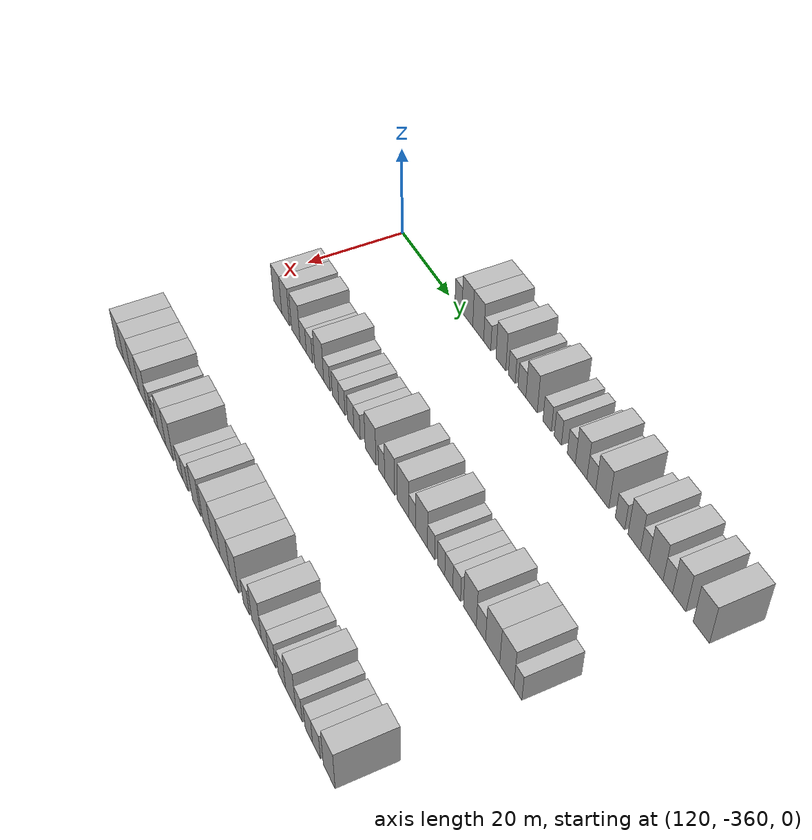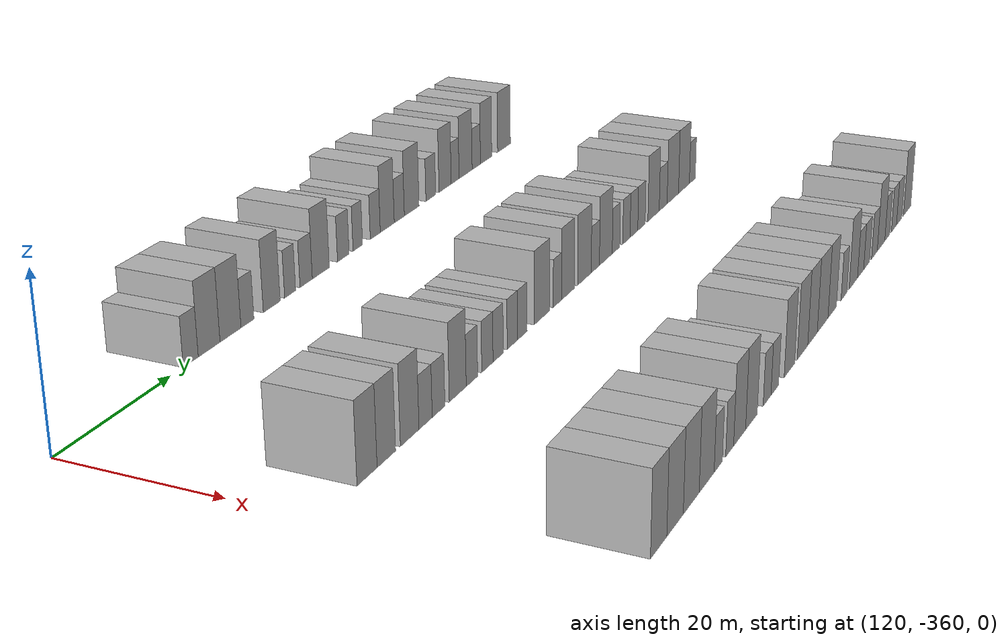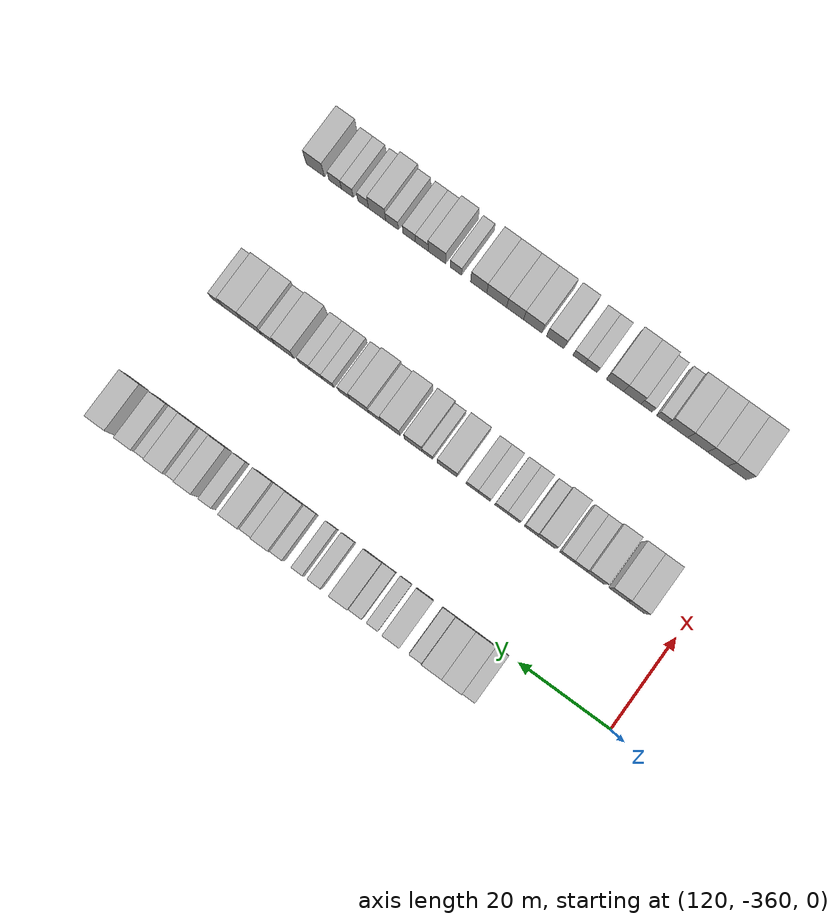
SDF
<sdf version="1.6">
 <world name="default">
  <model name="building_715">
   <static>1</static>
   <pose>115.0000 -336.2109 0 0.000000 0.000000 0.000000</pose>
   <link name="link">
    <pose>0 0 3.00 0 0 0</pose>
    <collision name="collision"><geometry><box><size>10.0000 2.8570 6.0000</size></box></geometry></collision>
    <visual name="visual">
     <cast_shadows>0</cast_shadows>
     <geometry><box><size>10.0000 2.8570 6.0000</size></box></geometry>
     <material>
      <script>
       <uri>model://HANNAS_wall/materials/scripts</uri>
       <uri>model://HANNAS_wall/materials/textures</uri>
       <name>vrc/HANNAS_wall</name>
      </script>
     </material>
    </visual>
   </link>
  </model>
  <model name="building_716">
   <static>1</static>
   <pose>115.0000 -332.6510 0 0.000000 0.000000 0.000000</pose>
   <link name="link">
    <pose>0 0 4.50 0 0 0</pose>
    <collision name="collision"><geometry><box><size>10.0000 4.2629 9.0000</size></box></geometry></collision>
    <visual name="visual">
     <cast_shadows>0</cast_shadows>
     <geometry><box><size>10.0000 4.2629 9.0000</size></box></geometry>
     <material>
      <script>
       <uri>model://HANNAS_wall/materials/scripts</uri>
       <uri>model://HANNAS_wall/materials/textures</uri>
       <name>vrc/HANNAS_wall</name>
      </script>
     </material>
    </visual>
   </link>
  </model>
  <model name="building_717">
   <static>1</static>
   <pose>115.0000 -328.3897 0 0.000000 0.000000 0.000000</pose>
   <link name="link">
    <pose>0 0 4.50 0 0 0</pose>
    <collision name="collision"><geometry><box><size>10.0000 4.2595 9.0000</size></box></geometry></collision>
    <visual name="visual">
     <cast_shadows>0</cast_shadows>
     <geometry><box><size>10.0000 4.2595 9.0000</size></box></geometry>
     <material>
      <script>
       <uri>model://HANNAS_wall/materials/scripts</uri>
       <uri>model://HANNAS_wall/materials/textures</uri>
       <name>vrc/HANNAS_wall</name>
      </script>
     </material>
    </visual>
   </link>
  </model>
  <model name="building_718">
   <static>1</static>
   <pose>115.0000 -324.9057 0 0.000000 0.000000 0.000000</pose>
   <link name="link">
    <pose>0 0 3.00 0 0 0</pose>
    <collision name="collision"><geometry><box><size>10.0000 2.7086 6.0000</size></box></geometry></collision>
    <visual name="visual">
     <cast_shadows>0</cast_shadows>
     <geometry><box><size>10.0000 2.7086 6.0000</size></box></geometry>
     <material>
      <script>
       <uri>model://HANNAS_wall/materials/scripts</uri>
       <uri>model://HANNAS_wall/materials/textures</uri>
       <name>vrc/HANNAS_wall</name>
      </script>
     </material>
    </visual>
   </link>
  </model>
  <model name="building_719">
   <static>1</static>
   <pose>115.0000 -319.7165 0 0.000000 0.000000 0.000000</pose>
   <link name="link">
    <pose>0 0 4.50 0 0 0</pose>
    <collision name="collision"><geometry><box><size>10.0000 3.6697 9.0000</size></box></geometry></collision>
    <visual name="visual">
     <cast_shadows>0</cast_shadows>
     <geometry><box><size>10.0000 3.6697 9.0000</size></box></geometry>
     <material>
      <script>
       <uri>model://HANNAS_wall/materials/scripts</uri>
       <uri>model://HANNAS_wall/materials/textures</uri>
       <name>vrc/HANNAS_wall</name>
      </script>
     </material>
    </visual>
   </link>
  </model>
  <model name="building_720">
   <static>1</static>
   <pose>115.0000 -315.6428 0 0.000000 0.000000 0.000000</pose>
   <link name="link">
    <pose>0 0 3.00 0 0 0</pose>
    <collision name="collision"><geometry><box><size>10.0000 2.4778 6.0000</size></box></geometry></collision>
    <visual name="visual">
     <cast_shadows>0</cast_shadows>
     <geometry><box><size>10.0000 2.4778 6.0000</size></box></geometry>
     <material>
      <script>
       <uri>model://HANNAS_wall/materials/scripts</uri>
       <uri>model://HANNAS_wall/materials/textures</uri>
       <name>vrc/HANNAS_wall</name>
      </script>
     </material>
    </visual>
   </link>
  </model>
  <model name="building_721">
   <static>1</static>
   <pose>115.0000 -311.9733 0 0.000000 0.000000 0.000000</pose>
   <link name="link">
    <pose>0 0 3.00 0 0 0</pose>
    <collision name="collision"><geometry><box><size>10.0000 2.8614 6.0000</size></box></geometry></collision>
    <visual name="visual">
     <cast_shadows>0</cast_shadows>
     <geometry><box><size>10.0000 2.8614 6.0000</size></box></geometry>
     <material>
      <script>
       <uri>model://HANNAS_wall/materials/scripts</uri>
       <uri>model://HANNAS_wall/materials/textures</uri>
       <name>vrc/HANNAS_wall</name>
      </script>
     </material>
    </visual>
   </link>
  </model>
  <model name="building_722">
   <static>1</static>
   <pose>115.0000 -308.5242 0 0.000000 0.000000 0.000000</pose>
   <link name="link">
    <pose>0 0 4.50 0 0 0</pose>
    <collision name="collision"><geometry><box><size>10.0000 4.0368 9.0000</size></box></geometry></collision>
    <visual name="visual">
     <cast_shadows>0</cast_shadows>
     <geometry><box><size>10.0000 4.0368 9.0000</size></box></geometry>
     <material>
      <script>
       <uri>model://HANNAS_wall/materials/scripts</uri>
       <uri>model://HANNAS_wall/materials/textures</uri>
       <name>vrc/HANNAS_wall</name>
      </script>
     </material>
    </visual>
   </link>
  </model>
  <model name="building_723">
   <static>1</static>
   <pose>115.0000 -303.0676 0 0.000000 0.000000 0.000000</pose>
   <link name="link">
    <pose>0 0 3.00 0 0 0</pose>
    <collision name="collision"><geometry><box><size>10.0000 2.8765 6.0000</size></box></geometry></collision>
    <visual name="visual">
     <cast_shadows>0</cast_shadows>
     <geometry><box><size>10.0000 2.8765 6.0000</size></box></geometry>
     <material>
      <script>
       <uri>model://HANNAS_wall/materials/scripts</uri>
       <uri>model://HANNAS_wall/materials/textures</uri>
       <name>vrc/HANNAS_wall</name>
      </script>
     </material>
    </visual>
   </link>
  </model>
  <model name="building_724">
   <static>1</static>
   <pose>115.0000 -299.4144 0 0.000000 0.000000 0.000000</pose>
   <link name="link">
    <pose>0 0 3.00 0 0 0</pose>
    <collision name="collision"><geometry><box><size>10.0000 2.4298 6.0000</size></box></geometry></collision>
    <visual name="visual">
     <cast_shadows>0</cast_shadows>
     <geometry><box><size>10.0000 2.4298 6.0000</size></box></geometry>
     <material>
      <script>
       <uri>model://HANNAS_wall/materials/scripts</uri>
       <uri>model://HANNAS_wall/materials/textures</uri>
       <name>vrc/HANNAS_wall</name>
      </script>
     </material>
    </visual>
   </link>
  </model>
  <model name="building_725">
   <static>1</static>
   <pose>115.0000 -294.8780 0 0.000000 0.000000 0.000000</pose>
   <link name="link">
    <pose>0 0 3.00 0 0 0</pose>
    <collision name="collision"><geometry><box><size>10.0000 2.6429 6.0000</size></box></geometry></collision>
    <visual name="visual">
     <cast_shadows>0</cast_shadows>
     <geometry><box><size>10.0000 2.6429 6.0000</size></box></geometry>
     <material>
      <script>
       <uri>model://HANNAS_wall/materials/scripts</uri>
       <uri>model://HANNAS_wall/materials/textures</uri>
       <name>vrc/HANNAS_wall</name>
      </script>
     </material>
    </visual>
   </link>
  </model>
  <model name="building_726">
   <static>1</static>
   <pose>115.0000 -291.6686 0 0.000000 0.000000 0.000000</pose>
   <link name="link">
    <pose>0 0 4.50 0 0 0</pose>
    <collision name="collision"><geometry><box><size>10.0000 3.7758 9.0000</size></box></geometry></collision>
    <visual name="visual">
     <cast_shadows>0</cast_shadows>
     <geometry><box><size>10.0000 3.7758 9.0000</size></box></geometry>
     <material>
      <script>
       <uri>model://HANNAS_wall/materials/scripts</uri>
       <uri>model://HANNAS_wall/materials/textures</uri>
       <name>vrc/HANNAS_wall</name>
      </script>
     </material>
    </visual>
   </link>
  </model>
  <model name="building_727">
   <static>1</static>
   <pose>115.0000 -288.3835 0 0.000000 0.000000 0.000000</pose>
   <link name="link">
    <pose>0 0 3.00 0 0 0</pose>
    <collision name="collision"><geometry><box><size>10.0000 2.7945 6.0000</size></box></geometry></collision>
    <visual name="visual">
     <cast_shadows>0</cast_shadows>
     <geometry><box><size>10.0000 2.7945 6.0000</size></box></geometry>
     <material>
      <script>
       <uri>model://HANNAS_wall/materials/scripts</uri>
       <uri>model://HANNAS_wall/materials/textures</uri>
       <name>vrc/HANNAS_wall</name>
      </script>
     </material>
    </visual>
   </link>
  </model>
  <model name="building_728">
   <static>1</static>
   <pose>115.0000 -284.9111 0 0.000000 0.000000 0.000000</pose>
   <link name="link">
    <pose>0 0 4.50 0 0 0</pose>
    <collision name="collision"><geometry><box><size>10.0000 4.1502 9.0000</size></box></geometry></collision>
    <visual name="visual">
     <cast_shadows>0</cast_shadows>
     <geometry><box><size>10.0000 4.1502 9.0000</size></box></geometry>
     <material>
      <script>
       <uri>model://HANNAS_wall/materials/scripts</uri>
       <uri>model://HANNAS_wall/materials/textures</uri>
       <name>vrc/HANNAS_wall</name>
      </script>
     </material>
    </visual>
   </link>
  </model>
  <model name="building_729">
   <static>1</static>
   <pose>115.0000 -279.4002 0 0.000000 0.000000 0.000000</pose>
   <link name="link">
    <pose>0 0 3.00 0 0 0</pose>
    <collision name="collision"><geometry><box><size>10.0000 2.8717 6.0000</size></box></geometry></collision>
    <visual name="visual">
     <cast_shadows>0</cast_shadows>
     <geometry><box><size>10.0000 2.8717 6.0000</size></box></geometry>
     <material>
      <script>
       <uri>model://HANNAS_wall/materials/scripts</uri>
       <uri>model://HANNAS_wall/materials/textures</uri>
       <name>vrc/HANNAS_wall</name>
      </script>
     </material>
    </visual>
   </link>
  </model>
  <model name="building_730">
   <static>1</static>
   <pose>115.0000 -275.1136 0 0.000000 0.000000 0.000000</pose>
   <link name="link">
    <pose>0 0 4.50 0 0 0</pose>
    <collision name="collision"><geometry><box><size>10.0000 3.7015 9.0000</size></box></geometry></collision>
    <visual name="visual">
     <cast_shadows>0</cast_shadows>
     <geometry><box><size>10.0000 3.7015 9.0000</size></box></geometry>
     <material>
      <script>
       <uri>model://HANNAS_wall/materials/scripts</uri>
       <uri>model://HANNAS_wall/materials/textures</uri>
       <name>vrc/HANNAS_wall</name>
      </script>
     </material>
    </visual>
   </link>
  </model>
  <model name="building_731">
   <static>1</static>
   <pose>115.0000 -272.0405 0 0.000000 0.000000 0.000000</pose>
   <link name="link">
    <pose>0 0 3.00 0 0 0</pose>
    <collision name="collision"><geometry><box><size>10.0000 2.4447 6.0000</size></box></geometry></collision>
    <visual name="visual">
     <cast_shadows>0</cast_shadows>
     <geometry><box><size>10.0000 2.4447 6.0000</size></box></geometry>
     <material>
      <script>
       <uri>model://HANNAS_wall/materials/scripts</uri>
       <uri>model://HANNAS_wall/materials/textures</uri>
       <name>vrc/HANNAS_wall</name>
      </script>
     </material>
    </visual>
   </link>
  </model>
  <model name="building_732">
   <static>1</static>
   <pose>115.0000 -268.7542 0 0.000000 0.000000 0.000000</pose>
   <link name="link">
    <pose>0 0 4.50 0 0 0</pose>
    <collision name="collision"><geometry><box><size>10.0000 4.1280 9.0000</size></box></geometry></collision>
    <visual name="visual">
     <cast_shadows>0</cast_shadows>
     <geometry><box><size>10.0000 4.1280 9.0000</size></box></geometry>
     <material>
      <script>
       <uri>model://HANNAS_wall/materials/scripts</uri>
       <uri>model://HANNAS_wall/materials/textures</uri>
       <name>vrc/HANNAS_wall</name>
      </script>
     </material>
    </visual>
   </link>
  </model>
  <model name="building_733">
   <static>1</static>
   <pose>115.0000 -265.3446 0 0.000000 0.000000 0.000000</pose>
   <link name="link">
    <pose>0 0 3.00 0 0 0</pose>
    <collision name="collision"><geometry><box><size>10.0000 2.6912 6.0000</size></box></geometry></collision>
    <visual name="visual">
     <cast_shadows>0</cast_shadows>
     <geometry><box><size>10.0000 2.6912 6.0000</size></box></geometry>
     <material>
      <script>
       <uri>model://HANNAS_wall/materials/scripts</uri>
       <uri>model://HANNAS_wall/materials/textures</uri>
       <name>vrc/HANNAS_wall</name>
      </script>
     </material>
    </visual>
   </link>
  </model>
  <model name="building_734">
   <static>1</static>
   <pose>115.0000 -262.1402 0 0.000000 0.000000 0.000000</pose>
   <link name="link">
    <pose>0 0 4.50 0 0 0</pose>
    <collision name="collision"><geometry><box><size>10.0000 3.7177 9.0000</size></box></geometry></collision>
    <visual name="visual">
     <cast_shadows>0</cast_shadows>
     <geometry><box><size>10.0000 3.7177 9.0000</size></box></geometry>
     <material>
      <script>
       <uri>model://HANNAS_wall/materials/scripts</uri>
       <uri>model://HANNAS_wall/materials/textures</uri>
       <name>vrc/HANNAS_wall</name>
      </script>
     </material>
    </visual>
   </link>
  </model>
  <model name="building_735">
   <static>1</static>
   <pose>115.0000 -256.0846 0 0.000000 0.000000 0.000000</pose>
   <link name="link">
    <pose>0 0 4.50 0 0 0</pose>
    <collision name="collision"><geometry><box><size>10.0000 4.3934 9.0000</size></box></geometry></collision>
    <visual name="visual">
     <cast_shadows>0</cast_shadows>
     <geometry><box><size>10.0000 4.3934 9.0000</size></box></geometry>
     <material>
      <script>
       <uri>model://HANNAS_wall/materials/scripts</uri>
       <uri>model://HANNAS_wall/materials/textures</uri>
       <name>vrc/HANNAS_wall</name>
      </script>
     </material>
    </visual>
   </link>
  </model>
  <model name="building_938">
   <static>1</static>
   <pose>145.0000 -350.9941 0 0.000000 0.000000 0.000000</pose>
   <link name="link">
    <pose>0 0 4.50 0 0 0</pose>
    <collision name="collision"><geometry><box><size>10.0000 3.9386 9.0000</size></box></geometry></collision>
    <visual name="visual">
     <cast_shadows>0</cast_shadows>
     <geometry><box><size>10.0000 3.9386 9.0000</size></box></geometry>
     <material>
      <script>
       <uri>model://HANNAS_wall/materials/scripts</uri>
       <uri>model://HANNAS_wall/materials/textures</uri>
       <name>vrc/HANNAS_wall</name>
      </script>
     </material>
    </visual>
   </link>
  </model>
  <model name="building_939">
   <static>1</static>
   <pose>145.0000 -347.1530 0 0.000000 0.000000 0.000000</pose>
   <link name="link">
    <pose>0 0 4.50 0 0 0</pose>
    <collision name="collision"><geometry><box><size>10.0000 3.7435 9.0000</size></box></geometry></collision>
    <visual name="visual">
     <cast_shadows>0</cast_shadows>
     <geometry><box><size>10.0000 3.7435 9.0000</size></box></geometry>
     <material>
      <script>
       <uri>model://HANNAS_wall/materials/scripts</uri>
       <uri>model://HANNAS_wall/materials/textures</uri>
       <name>vrc/HANNAS_wall</name>
      </script>
     </material>
    </visual>
   </link>
  </model>
  <model name="building_940">
   <static>1</static>
   <pose>145.0000 -342.3034 0 0.000000 0.000000 0.000000</pose>
   <link name="link">
    <pose>0 0 4.50 0 0 0</pose>
    <collision name="collision"><geometry><box><size>10.0000 3.9558 9.0000</size></box></geometry></collision>
    <visual name="visual">
     <cast_shadows>0</cast_shadows>
     <geometry><box><size>10.0000 3.9558 9.0000</size></box></geometry>
     <material>
      <script>
       <uri>model://HANNAS_wall/materials/scripts</uri>
       <uri>model://HANNAS_wall/materials/textures</uri>
       <name>vrc/HANNAS_wall</name>
      </script>
     </material>
    </visual>
   </link>
  </model>
  <model name="building_941">
   <static>1</static>
   <pose>145.0000 -338.8755 0 0.000000 0.000000 0.000000</pose>
   <link name="link">
    <pose>0 0 3.00 0 0 0</pose>
    <collision name="collision"><geometry><box><size>10.0000 2.8999 6.0000</size></box></geometry></collision>
    <visual name="visual">
     <cast_shadows>0</cast_shadows>
     <geometry><box><size>10.0000 2.8999 6.0000</size></box></geometry>
     <material>
      <script>
       <uri>model://HANNAS_wall/materials/scripts</uri>
       <uri>model://HANNAS_wall/materials/textures</uri>
       <name>vrc/HANNAS_wall</name>
      </script>
     </material>
    </visual>
   </link>
  </model>
  <model name="building_942">
   <static>1</static>
   <pose>145.0000 -335.9991 0 0.000000 0.000000 0.000000</pose>
   <link name="link">
    <pose>0 0 3.00 0 0 0</pose>
    <collision name="collision"><geometry><box><size>10.0000 2.8530 6.0000</size></box></geometry></collision>
    <visual name="visual">
     <cast_shadows>0</cast_shadows>
     <geometry><box><size>10.0000 2.8530 6.0000</size></box></geometry>
     <material>
      <script>
       <uri>model://HANNAS_wall/materials/scripts</uri>
       <uri>model://HANNAS_wall/materials/textures</uri>
       <name>vrc/HANNAS_wall</name>
      </script>
     </material>
    </visual>
   </link>
  </model>
  <model name="building_943">
   <static>1</static>
   <pose>145.0000 -331.5865 0 0.000000 0.000000 0.000000</pose>
   <link name="link">
    <pose>0 0 4.50 0 0 0</pose>
    <collision name="collision"><geometry><box><size>10.0000 3.9721 9.0000</size></box></geometry></collision>
    <visual name="visual">
     <cast_shadows>0</cast_shadows>
     <geometry><box><size>10.0000 3.9721 9.0000</size></box></geometry>
     <material>
      <script>
       <uri>model://HANNAS_wall/materials/scripts</uri>
       <uri>model://HANNAS_wall/materials/textures</uri>
       <name>vrc/HANNAS_wall</name>
      </script>
     </material>
    </visual>
   </link>
  </model>
  <model name="building_944">
   <static>1</static>
   <pose>145.0000 -328.2192 0 0.000000 0.000000 0.000000</pose>
   <link name="link">
    <pose>0 0 3.00 0 0 0</pose>
    <collision name="collision"><geometry><box><size>10.0000 2.7624 6.0000</size></box></geometry></collision>
    <visual name="visual">
     <cast_shadows>0</cast_shadows>
     <geometry><box><size>10.0000 2.7624 6.0000</size></box></geometry>
     <material>
      <script>
       <uri>model://HANNAS_wall/materials/scripts</uri>
       <uri>model://HANNAS_wall/materials/textures</uri>
       <name>vrc/HANNAS_wall</name>
      </script>
     </material>
    </visual>
   </link>
  </model>
  <model name="building_945">
   <static>1</static>
   <pose>145.0000 -324.4283 0 0.000000 0.000000 0.000000</pose>
   <link name="link">
    <pose>0 0 3.00 0 0 0</pose>
    <collision name="collision"><geometry><box><size>10.0000 2.8195 6.0000</size></box></geometry></collision>
    <visual name="visual">
     <cast_shadows>0</cast_shadows>
     <geometry><box><size>10.0000 2.8195 6.0000</size></box></geometry>
     <material>
      <script>
       <uri>model://HANNAS_wall/materials/scripts</uri>
       <uri>model://HANNAS_wall/materials/textures</uri>
       <name>vrc/HANNAS_wall</name>
      </script>
     </material>
    </visual>
   </link>
  </model>
  <model name="building_946">
   <static>1</static>
   <pose>145.0000 -321.7033 0 0.000000 0.000000 0.000000</pose>
   <link name="link">
    <pose>0 0 3.00 0 0 0</pose>
    <collision name="collision"><geometry><box><size>10.0000 2.6305 6.0000</size></box></geometry></collision>
    <visual name="visual">
     <cast_shadows>0</cast_shadows>
     <geometry><box><size>10.0000 2.6305 6.0000</size></box></geometry>
     <material>
      <script>
       <uri>model://HANNAS_wall/materials/scripts</uri>
       <uri>model://HANNAS_wall/materials/textures</uri>
       <name>vrc/HANNAS_wall</name>
      </script>
     </material>
    </visual>
   </link>
  </model>
  <model name="building_947">
   <static>1</static>
   <pose>145.0000 -318.0372 0 0.000000 0.000000 0.000000</pose>
   <link name="link">
    <pose>0 0 3.00 0 0 0</pose>
    <collision name="collision"><geometry><box><size>10.0000 2.7016 6.0000</size></box></geometry></collision>
    <visual name="visual">
     <cast_shadows>0</cast_shadows>
     <geometry><box><size>10.0000 2.7016 6.0000</size></box></geometry>
     <material>
      <script>
       <uri>model://HANNAS_wall/materials/scripts</uri>
       <uri>model://HANNAS_wall/materials/textures</uri>
       <name>vrc/HANNAS_wall</name>
      </script>
     </material>
    </visual>
   </link>
  </model>
  <model name="building_948">
   <static>1</static>
   <pose>145.0000 -315.3774 0 0.000000 0.000000 0.000000</pose>
   <link name="link">
    <pose>0 0 3.00 0 0 0</pose>
    <collision name="collision"><geometry><box><size>10.0000 2.6180 6.0000</size></box></geometry></collision>
    <visual name="visual">
     <cast_shadows>0</cast_shadows>
     <geometry><box><size>10.0000 2.6180 6.0000</size></box></geometry>
     <material>
      <script>
       <uri>model://HANNAS_wall/materials/scripts</uri>
       <uri>model://HANNAS_wall/materials/textures</uri>
       <name>vrc/HANNAS_wall</name>
      </script>
     </material>
    </visual>
   </link>
  </model>
  <model name="building_949">
   <static>1</static>
   <pose>145.0000 -309.8979 0 0.000000 0.000000 0.000000</pose>
   <link name="link">
    <pose>0 0 4.50 0 0 0</pose>
    <collision name="collision"><geometry><box><size>10.0000 4.3411 9.0000</size></box></geometry></collision>
    <visual name="visual">
     <cast_shadows>0</cast_shadows>
     <geometry><box><size>10.0000 4.3411 9.0000</size></box></geometry>
     <material>
      <script>
       <uri>model://HANNAS_wall/materials/scripts</uri>
       <uri>model://HANNAS_wall/materials/textures</uri>
       <name>vrc/HANNAS_wall</name>
      </script>
     </material>
    </visual>
   </link>
  </model>
  <model name="building_950">
   <static>1</static>
   <pose>145.0000 -305.5266 0 0.000000 0.000000 0.000000</pose>
   <link name="link">
    <pose>0 0 3.00 0 0 0</pose>
    <collision name="collision"><geometry><box><size>10.0000 2.4014 6.0000</size></box></geometry></collision>
    <visual name="visual">
     <cast_shadows>0</cast_shadows>
     <geometry><box><size>10.0000 2.4014 6.0000</size></box></geometry>
     <material>
      <script>
       <uri>model://HANNAS_wall/materials/scripts</uri>
       <uri>model://HANNAS_wall/materials/textures</uri>
       <name>vrc/HANNAS_wall</name>
      </script>
     </material>
    </visual>
   </link>
  </model>
  <model name="building_951">
   <static>1</static>
   <pose>145.0000 -302.4135 0 0.000000 0.000000 0.000000</pose>
   <link name="link">
    <pose>0 0 4.50 0 0 0</pose>
    <collision name="collision"><geometry><box><size>10.0000 3.8249 9.0000</size></box></geometry></collision>
    <visual name="visual">
     <cast_shadows>0</cast_shadows>
     <geometry><box><size>10.0000 3.8249 9.0000</size></box></geometry>
     <material>
      <script>
       <uri>model://HANNAS_wall/materials/scripts</uri>
       <uri>model://HANNAS_wall/materials/textures</uri>
       <name>vrc/HANNAS_wall</name>
      </script>
     </material>
    </visual>
   </link>
  </model>
  <model name="building_952">
   <static>1</static>
   <pose>145.0000 -297.3674 0 0.000000 0.000000 0.000000</pose>
   <link name="link">
    <pose>0 0 4.50 0 0 0</pose>
    <collision name="collision"><geometry><box><size>10.0000 4.2671 9.0000</size></box></geometry></collision>
    <visual name="visual">
     <cast_shadows>0</cast_shadows>
     <geometry><box><size>10.0000 4.2671 9.0000</size></box></geometry>
     <material>
      <script>
       <uri>model://HANNAS_wall/materials/scripts</uri>
       <uri>model://HANNAS_wall/materials/textures</uri>
       <name>vrc/HANNAS_wall</name>
      </script>
     </material>
    </visual>
   </link>
  </model>
  <model name="building_953">
   <static>1</static>
   <pose>145.0000 -293.9195 0 0.000000 0.000000 0.000000</pose>
   <link name="link">
    <pose>0 0 3.00 0 0 0</pose>
    <collision name="collision"><geometry><box><size>10.0000 2.6287 6.0000</size></box></geometry></collision>
    <visual name="visual">
     <cast_shadows>0</cast_shadows>
     <geometry><box><size>10.0000 2.6287 6.0000</size></box></geometry>
     <material>
      <script>
       <uri>model://HANNAS_wall/materials/scripts</uri>
       <uri>model://HANNAS_wall/materials/textures</uri>
       <name>vrc/HANNAS_wall</name>
      </script>
     </material>
    </visual>
   </link>
  </model>
  <model name="building_954">
   <static>1</static>
   <pose>145.0000 -290.5045 0 0.000000 0.000000 0.000000</pose>
   <link name="link">
    <pose>0 0 4.50 0 0 0</pose>
    <collision name="collision"><geometry><box><size>10.0000 4.2014 9.0000</size></box></geometry></collision>
    <visual name="visual">
     <cast_shadows>0</cast_shadows>
     <geometry><box><size>10.0000 4.2014 9.0000</size></box></geometry>
     <material>
      <script>
       <uri>model://HANNAS_wall/materials/scripts</uri>
       <uri>model://HANNAS_wall/materials/textures</uri>
       <name>vrc/HANNAS_wall</name>
      </script>
     </material>
    </visual>
   </link>
  </model>
  <model name="building_955">
   <static>1</static>
   <pose>145.0000 -287.1358 0 0.000000 0.000000 0.000000</pose>
   <link name="link">
    <pose>0 0 3.00 0 0 0</pose>
    <collision name="collision"><geometry><box><size>10.0000 2.5360 6.0000</size></box></geometry></collision>
    <visual name="visual">
     <cast_shadows>0</cast_shadows>
     <geometry><box><size>10.0000 2.5360 6.0000</size></box></geometry>
     <material>
      <script>
       <uri>model://HANNAS_wall/materials/scripts</uri>
       <uri>model://HANNAS_wall/materials/textures</uri>
       <name>vrc/HANNAS_wall</name>
      </script>
     </material>
    </visual>
   </link>
  </model>
  <model name="building_956">
   <static>1</static>
   <pose>145.0000 -283.5906 0 0.000000 0.000000 0.000000</pose>
   <link name="link">
    <pose>0 0 3.00 0 0 0</pose>
    <collision name="collision"><geometry><box><size>10.0000 2.5544 6.0000</size></box></geometry></collision>
    <visual name="visual">
     <cast_shadows>0</cast_shadows>
     <geometry><box><size>10.0000 2.5544 6.0000</size></box></geometry>
     <material>
      <script>
       <uri>model://HANNAS_wall/materials/scripts</uri>
       <uri>model://HANNAS_wall/materials/textures</uri>
       <name>vrc/HANNAS_wall</name>
      </script>
     </material>
    </visual>
   </link>
  </model>
  <model name="building_957">
   <static>1</static>
   <pose>145.0000 -280.9623 0 0.000000 0.000000 0.000000</pose>
   <link name="link">
    <pose>0 0 3.00 0 0 0</pose>
    <collision name="collision"><geometry><box><size>10.0000 2.7021 6.0000</size></box></geometry></collision>
    <visual name="visual">
     <cast_shadows>0</cast_shadows>
     <geometry><box><size>10.0000 2.7021 6.0000</size></box></geometry>
     <material>
      <script>
       <uri>model://HANNAS_wall/materials/scripts</uri>
       <uri>model://HANNAS_wall/materials/textures</uri>
       <name>vrc/HANNAS_wall</name>
      </script>
     </material>
    </visual>
   </link>
  </model>
  <model name="building_958">
   <static>1</static>
   <pose>145.0000 -278.2884 0 0.000000 0.000000 0.000000</pose>
   <link name="link">
    <pose>0 0 3.00 0 0 0</pose>
    <collision name="collision"><geometry><box><size>10.0000 2.6458 6.0000</size></box></geometry></collision>
    <visual name="visual">
     <cast_shadows>0</cast_shadows>
     <geometry><box><size>10.0000 2.6458 6.0000</size></box></geometry>
     <material>
      <script>
       <uri>model://HANNAS_wall/materials/scripts</uri>
       <uri>model://HANNAS_wall/materials/textures</uri>
       <name>vrc/HANNAS_wall</name>
      </script>
     </material>
    </visual>
   </link>
  </model>
  <model name="building_959">
   <static>1</static>
   <pose>145.0000 -273.8691 0 0.000000 0.000000 0.000000</pose>
   <link name="link">
    <pose>0 0 4.50 0 0 0</pose>
    <collision name="collision"><geometry><box><size>10.0000 4.1928 9.0000</size></box></geometry></collision>
    <visual name="visual">
     <cast_shadows>0</cast_shadows>
     <geometry><box><size>10.0000 4.1928 9.0000</size></box></geometry>
     <material>
      <script>
       <uri>model://HANNAS_wall/materials/scripts</uri>
       <uri>model://HANNAS_wall/materials/textures</uri>
       <name>vrc/HANNAS_wall</name>
      </script>
     </material>
    </visual>
   </link>
  </model>
  <model name="building_960">
   <static>1</static>
   <pose>145.0000 -270.2738 0 0.000000 0.000000 0.000000</pose>
   <link name="link">
    <pose>0 0 3.00 0 0 0</pose>
    <collision name="collision"><geometry><box><size>10.0000 2.9980 6.0000</size></box></geometry></collision>
    <visual name="visual">
     <cast_shadows>0</cast_shadows>
     <geometry><box><size>10.0000 2.9980 6.0000</size></box></geometry>
     <material>
      <script>
       <uri>model://HANNAS_wall/materials/scripts</uri>
       <uri>model://HANNAS_wall/materials/textures</uri>
       <name>vrc/HANNAS_wall</name>
      </script>
     </material>
    </visual>
   </link>
  </model>
  <model name="building_961">
   <static>1</static>
   <pose>145.0000 -266.5389 0 0.000000 0.000000 0.000000</pose>
   <link name="link">
    <pose>0 0 4.50 0 0 0</pose>
    <collision name="collision"><geometry><box><size>10.0000 4.4718 9.0000</size></box></geometry></collision>
    <visual name="visual">
     <cast_shadows>0</cast_shadows>
     <geometry><box><size>10.0000 4.4718 9.0000</size></box></geometry>
     <material>
      <script>
       <uri>model://HANNAS_wall/materials/scripts</uri>
       <uri>model://HANNAS_wall/materials/textures</uri>
       <name>vrc/HANNAS_wall</name>
      </script>
     </material>
    </visual>
   </link>
  </model>
  <model name="building_962">
   <static>1</static>
   <pose>145.0000 -262.1190 0 0.000000 0.000000 0.000000</pose>
   <link name="link">
    <pose>0 0 4.50 0 0 0</pose>
    <collision name="collision"><geometry><box><size>10.0000 4.3680 9.0000</size></box></geometry></collision>
    <visual name="visual">
     <cast_shadows>0</cast_shadows>
     <geometry><box><size>10.0000 4.3680 9.0000</size></box></geometry>
     <material>
      <script>
       <uri>model://HANNAS_wall/materials/scripts</uri>
       <uri>model://HANNAS_wall/materials/textures</uri>
       <name>vrc/HANNAS_wall</name>
      </script>
     </material>
    </visual>
   </link>
  </model>
  <model name="building_963">
   <static>1</static>
   <pose>145.0000 -258.7202 0 0.000000 0.000000 0.000000</pose>
   <link name="link">
    <pose>0 0 3.00 0 0 0</pose>
    <collision name="collision"><geometry><box><size>10.0000 2.4294 6.0000</size></box></geometry></collision>
    <visual name="visual">
     <cast_shadows>0</cast_shadows>
     <geometry><box><size>10.0000 2.4294 6.0000</size></box></geometry>
     <material>
      <script>
       <uri>model://HANNAS_wall/materials/scripts</uri>
       <uri>model://HANNAS_wall/materials/textures</uri>
       <name>vrc/HANNAS_wall</name>
      </script>
     </material>
    </visual>
   </link>
  </model>
  <model name="building_1172">
   <static>1</static>
   <pose>175.0000 -351.9526 0 0.000000 0.000000 0.000000</pose>
   <link name="link">
    <pose>0 0 4.50 0 0 0</pose>
    <collision name="collision"><geometry><box><size>10.0000 4.1231 9.0000</size></box></geometry></collision>
    <visual name="visual">
     <cast_shadows>0</cast_shadows>
     <geometry><box><size>10.0000 4.1231 9.0000</size></box></geometry>
     <material>
      <script>
       <uri>model://HANNAS_wall/materials/scripts</uri>
       <uri>model://HANNAS_wall/materials/textures</uri>
       <name>vrc/HANNAS_wall</name>
      </script>
     </material>
    </visual>
   </link>
  </model>
  <model name="building_1173">
   <static>1</static>
   <pose>175.0000 -347.7173 0 0.000000 0.000000 0.000000</pose>
   <link name="link">
    <pose>0 0 4.50 0 0 0</pose>
    <collision name="collision"><geometry><box><size>10.0000 4.3475 9.0000</size></box></geometry></collision>
    <visual name="visual">
     <cast_shadows>0</cast_shadows>
     <geometry><box><size>10.0000 4.3475 9.0000</size></box></geometry>
     <material>
      <script>
       <uri>model://HANNAS_wall/materials/scripts</uri>
       <uri>model://HANNAS_wall/materials/textures</uri>
       <name>vrc/HANNAS_wall</name>
      </script>
     </material>
    </visual>
   </link>
  </model>
  <model name="building_1174">
   <static>1</static>
   <pose>175.0000 -343.3578 0 0.000000 0.000000 0.000000</pose>
   <link name="link">
    <pose>0 0 4.50 0 0 0</pose>
    <collision name="collision"><geometry><box><size>10.0000 4.3714 9.0000</size></box></geometry></collision>
    <visual name="visual">
     <cast_shadows>0</cast_shadows>
     <geometry><box><size>10.0000 4.3714 9.0000</size></box></geometry>
     <material>
      <script>
       <uri>model://HANNAS_wall/materials/scripts</uri>
       <uri>model://HANNAS_wall/materials/textures</uri>
       <name>vrc/HANNAS_wall</name>
      </script>
     </material>
    </visual>
   </link>
  </model>
  <model name="building_1175">
   <static>1</static>
   <pose>175.0000 -339.0161 0 0.000000 0.000000 0.000000</pose>
   <link name="link">
    <pose>0 0 4.50 0 0 0</pose>
    <collision name="collision"><geometry><box><size>10.0000 4.3120 9.0000</size></box></geometry></collision>
    <visual name="visual">
     <cast_shadows>0</cast_shadows>
     <geometry><box><size>10.0000 4.3120 9.0000</size></box></geometry>
     <material>
      <script>
       <uri>model://HANNAS_wall/materials/scripts</uri>
       <uri>model://HANNAS_wall/materials/textures</uri>
       <name>vrc/HANNAS_wall</name>
      </script>
     </material>
    </visual>
   </link>
  </model>
  <model name="building_1176">
   <static>1</static>
   <pose>175.0000 -335.6387 0 0.000000 0.000000 0.000000</pose>
   <link name="link">
    <pose>0 0 3.00 0 0 0</pose>
    <collision name="collision"><geometry><box><size>10.0000 2.4427 6.0000</size></box></geometry></collision>
    <visual name="visual">
     <cast_shadows>0</cast_shadows>
     <geometry><box><size>10.0000 2.4427 6.0000</size></box></geometry>
     <material>
      <script>
       <uri>model://HANNAS_wall/materials/scripts</uri>
       <uri>model://HANNAS_wall/materials/textures</uri>
       <name>vrc/HANNAS_wall</name>
      </script>
     </material>
    </visual>
   </link>
  </model>
  <model name="building_1177">
   <static>1</static>
   <pose>175.0000 -332.1941 0 0.000000 0.000000 0.000000</pose>
   <link name="link">
    <pose>0 0 3.00 0 0 0</pose>
    <collision name="collision"><geometry><box><size>10.0000 2.4465 6.0000</size></box></geometry></collision>
    <visual name="visual">
     <cast_shadows>0</cast_shadows>
     <geometry><box><size>10.0000 2.4465 6.0000</size></box></geometry>
     <material>
      <script>
       <uri>model://HANNAS_wall/materials/scripts</uri>
       <uri>model://HANNAS_wall/materials/textures</uri>
       <name>vrc/HANNAS_wall</name>
      </script>
     </material>
    </visual>
   </link>
  </model>
  <model name="building_1178">
   <static>1</static>
   <pose>175.0000 -329.0672 0 0.000000 0.000000 0.000000</pose>
   <link name="link">
    <pose>0 0 4.50 0 0 0</pose>
    <collision name="collision"><geometry><box><size>10.0000 3.8073 9.0000</size></box></geometry></collision>
    <visual name="visual">
     <cast_shadows>0</cast_shadows>
     <geometry><box><size>10.0000 3.8073 9.0000</size></box></geometry>
     <material>
      <script>
       <uri>model://HANNAS_wall/materials/scripts</uri>
       <uri>model://HANNAS_wall/materials/textures</uri>
       <name>vrc/HANNAS_wall</name>
      </script>
     </material>
    </visual>
   </link>
  </model>
  <model name="building_1179">
   <static>1</static>
   <pose>175.0000 -325.2650 0 0.000000 0.000000 0.000000</pose>
   <link name="link">
    <pose>0 0 4.50 0 0 0</pose>
    <collision name="collision"><geometry><box><size>10.0000 3.7972 9.0000</size></box></geometry></collision>
    <visual name="visual">
     <cast_shadows>0</cast_shadows>
     <geometry><box><size>10.0000 3.7972 9.0000</size></box></geometry>
     <material>
      <script>
       <uri>model://HANNAS_wall/materials/scripts</uri>
       <uri>model://HANNAS_wall/materials/textures</uri>
       <name>vrc/HANNAS_wall</name>
      </script>
     </material>
    </visual>
   </link>
  </model>
  <model name="building_1180">
   <static>1</static>
   <pose>175.0000 -320.0216 0 0.000000 0.000000 0.000000</pose>
   <link name="link">
    <pose>0 0 3.00 0 0 0</pose>
    <collision name="collision"><geometry><box><size>10.0000 2.6895 6.0000</size></box></geometry></collision>
    <visual name="visual">
     <cast_shadows>0</cast_shadows>
     <geometry><box><size>10.0000 2.6895 6.0000</size></box></geometry>
     <material>
      <script>
       <uri>model://HANNAS_wall/materials/scripts</uri>
       <uri>model://HANNAS_wall/materials/textures</uri>
       <name>vrc/HANNAS_wall</name>
      </script>
     </material>
    </visual>
   </link>
  </model>
  <model name="building_1181">
   <static>1</static>
   <pose>175.0000 -317.3276 0 0.000000 0.000000 0.000000</pose>
   <link name="link">
    <pose>0 0 3.00 0 0 0</pose>
    <collision name="collision"><geometry><box><size>10.0000 2.6984 6.0000</size></box></geometry></collision>
    <visual name="visual">
     <cast_shadows>0</cast_shadows>
     <geometry><box><size>10.0000 2.6984 6.0000</size></box></geometry>
     <material>
      <script>
       <uri>model://HANNAS_wall/materials/scripts</uri>
       <uri>model://HANNAS_wall/materials/textures</uri>
       <name>vrc/HANNAS_wall</name>
      </script>
     </material>
    </visual>
   </link>
  </model>
  <model name="building_1182">
   <static>1</static>
   <pose>175.0000 -312.0594 0 0.000000 0.000000 0.000000</pose>
   <link name="link">
    <pose>0 0 4.50 0 0 0</pose>
    <collision name="collision"><geometry><box><size>10.0000 3.8379 9.0000</size></box></geometry></collision>
    <visual name="visual">
     <cast_shadows>0</cast_shadows>
     <geometry><box><size>10.0000 3.8379 9.0000</size></box></geometry>
     <material>
      <script>
       <uri>model://HANNAS_wall/materials/scripts</uri>
       <uri>model://HANNAS_wall/materials/textures</uri>
       <name>vrc/HANNAS_wall</name>
      </script>
     </material>
    </visual>
   </link>
  </model>
  <model name="building_1183">
   <static>1</static>
   <pose>175.0000 -307.1052 0 0.000000 0.000000 0.000000</pose>
   <link name="link">
    <pose>0 0 4.50 0 0 0</pose>
    <collision name="collision"><geometry><box><size>10.0000 4.0706 9.0000</size></box></geometry></collision>
    <visual name="visual">
     <cast_shadows>0</cast_shadows>
     <geometry><box><size>10.0000 4.0706 9.0000</size></box></geometry>
     <material>
      <script>
       <uri>model://HANNAS_wall/materials/scripts</uri>
       <uri>model://HANNAS_wall/materials/textures</uri>
       <name>vrc/HANNAS_wall</name>
      </script>
     </material>
    </visual>
   </link>
  </model>
  <model name="building_1184">
   <static>1</static>
   <pose>175.0000 -303.1765 0 0.000000 0.000000 0.000000</pose>
   <link name="link">
    <pose>0 0 4.50 0 0 0</pose>
    <collision name="collision"><geometry><box><size>10.0000 3.7869 9.0000</size></box></geometry></collision>
    <visual name="visual">
     <cast_shadows>0</cast_shadows>
     <geometry><box><size>10.0000 3.7869 9.0000</size></box></geometry>
     <material>
      <script>
       <uri>model://HANNAS_wall/materials/scripts</uri>
       <uri>model://HANNAS_wall/materials/textures</uri>
       <name>vrc/HANNAS_wall</name>
      </script>
     </material>
    </visual>
   </link>
  </model>
  <model name="building_1185">
   <static>1</static>
   <pose>175.0000 -299.0780 0 0.000000 0.000000 0.000000</pose>
   <link name="link">
    <pose>0 0 4.50 0 0 0</pose>
    <collision name="collision"><geometry><box><size>10.0000 4.4100 9.0000</size></box></geometry></collision>
    <visual name="visual">
     <cast_shadows>0</cast_shadows>
     <geometry><box><size>10.0000 4.4100 9.0000</size></box></geometry>
     <material>
      <script>
       <uri>model://HANNAS_wall/materials/scripts</uri>
       <uri>model://HANNAS_wall/materials/textures</uri>
       <name>vrc/HANNAS_wall</name>
      </script>
     </material>
    </visual>
   </link>
  </model>
  <model name="building_1186">
   <static>1</static>
   <pose>175.0000 -295.0690 0 0.000000 0.000000 0.000000</pose>
   <link name="link">
    <pose>0 0 4.50 0 0 0</pose>
    <collision name="collision"><geometry><box><size>10.0000 3.6079 9.0000</size></box></geometry></collision>
    <visual name="visual">
     <cast_shadows>0</cast_shadows>
     <geometry><box><size>10.0000 3.6079 9.0000</size></box></geometry>
     <material>
      <script>
       <uri>model://HANNAS_wall/materials/scripts</uri>
       <uri>model://HANNAS_wall/materials/textures</uri>
       <name>vrc/HANNAS_wall</name>
      </script>
     </material>
    </visual>
   </link>
  </model>
  <model name="building_1187">
   <static>1</static>
   <pose>175.0000 -289.9815 0 0.000000 0.000000 0.000000</pose>
   <link name="link">
    <pose>0 0 3.00 0 0 0</pose>
    <collision name="collision"><geometry><box><size>10.0000 2.5672 6.0000</size></box></geometry></collision>
    <visual name="visual">
     <cast_shadows>0</cast_shadows>
     <geometry><box><size>10.0000 2.5672 6.0000</size></box></geometry>
     <material>
      <script>
       <uri>model://HANNAS_wall/materials/scripts</uri>
       <uri>model://HANNAS_wall/materials/textures</uri>
       <name>vrc/HANNAS_wall</name>
      </script>
     </material>
    </visual>
   </link>
  </model>
  <model name="building_1188">
   <static>1</static>
   <pose>175.0000 -285.7561 0 0.000000 0.000000 0.000000</pose>
   <link name="link">
    <pose>0 0 4.50 0 0 0</pose>
    <collision name="collision"><geometry><box><size>10.0000 3.8837 9.0000</size></box></geometry></collision>
    <visual name="visual">
     <cast_shadows>0</cast_shadows>
     <geometry><box><size>10.0000 3.8837 9.0000</size></box></geometry>
     <material>
      <script>
       <uri>model://HANNAS_wall/materials/scripts</uri>
       <uri>model://HANNAS_wall/materials/textures</uri>
       <name>vrc/HANNAS_wall</name>
      </script>
     </material>
    </visual>
   </link>
  </model>
  <model name="building_1189">
   <static>1</static>
   <pose>175.0000 -282.3669 0 0.000000 0.000000 0.000000</pose>
   <link name="link">
    <pose>0 0 3.00 0 0 0</pose>
    <collision name="collision"><geometry><box><size>10.0000 2.8947 6.0000</size></box></geometry></collision>
    <visual name="visual">
     <cast_shadows>0</cast_shadows>
     <geometry><box><size>10.0000 2.8947 6.0000</size></box></geometry>
     <material>
      <script>
       <uri>model://HANNAS_wall/materials/scripts</uri>
       <uri>model://HANNAS_wall/materials/textures</uri>
       <name>vrc/HANNAS_wall</name>
      </script>
     </material>
    </visual>
   </link>
  </model>
  <model name="building_1190">
   <static>1</static>
   <pose>175.0000 -279.5266 0 0.000000 0.000000 0.000000</pose>
   <link name="link">
    <pose>0 0 3.00 0 0 0</pose>
    <collision name="collision"><geometry><box><size>10.0000 2.7859 6.0000</size></box></geometry></collision>
    <visual name="visual">
     <cast_shadows>0</cast_shadows>
     <geometry><box><size>10.0000 2.7859 6.0000</size></box></geometry>
     <material>
      <script>
       <uri>model://HANNAS_wall/materials/scripts</uri>
       <uri>model://HANNAS_wall/materials/textures</uri>
       <name>vrc/HANNAS_wall</name>
      </script>
     </material>
    </visual>
   </link>
  </model>
  <model name="building_1191">
   <static>1</static>
   <pose>175.0000 -275.7056 0 0.000000 0.000000 0.000000</pose>
   <link name="link">
    <pose>0 0 3.00 0 0 0</pose>
    <collision name="collision"><geometry><box><size>10.0000 2.8560 6.0000</size></box></geometry></collision>
    <visual name="visual">
     <cast_shadows>0</cast_shadows>
     <geometry><box><size>10.0000 2.8560 6.0000</size></box></geometry>
     <material>
      <script>
       <uri>model://HANNAS_wall/materials/scripts</uri>
       <uri>model://HANNAS_wall/materials/textures</uri>
       <name>vrc/HANNAS_wall</name>
      </script>
     </material>
    </visual>
   </link>
  </model>
  <model name="building_1192">
   <static>1</static>
   <pose>175.0000 -272.3550 0 0.000000 0.000000 0.000000</pose>
   <link name="link">
    <pose>0 0 4.50 0 0 0</pose>
    <collision name="collision"><geometry><box><size>10.0000 3.8450 9.0000</size></box></geometry></collision>
    <visual name="visual">
     <cast_shadows>0</cast_shadows>
     <geometry><box><size>10.0000 3.8450 9.0000</size></box></geometry>
     <material>
      <script>
       <uri>model://HANNAS_wall/materials/scripts</uri>
       <uri>model://HANNAS_wall/materials/textures</uri>
       <name>vrc/HANNAS_wall</name>
      </script>
     </material>
    </visual>
   </link>
  </model>
  <model name="building_1193">
   <static>1</static>
   <pose>175.0000 -269.2246 0 0.000000 0.000000 0.000000</pose>
   <link name="link">
    <pose>0 0 3.00 0 0 0</pose>
    <collision name="collision"><geometry><box><size>10.0000 2.4158 6.0000</size></box></geometry></collision>
    <visual name="visual">
     <cast_shadows>0</cast_shadows>
     <geometry><box><size>10.0000 2.4158 6.0000</size></box></geometry>
     <material>
      <script>
       <uri>model://HANNAS_wall/materials/scripts</uri>
       <uri>model://HANNAS_wall/materials/textures</uri>
       <name>vrc/HANNAS_wall</name>
      </script>
     </material>
    </visual>
   </link>
  </model>
  <model name="building_1194">
   <static>1</static>
   <pose>175.0000 -265.6640 0 0.000000 0.000000 0.000000</pose>
   <link name="link">
    <pose>0 0 3.00 0 0 0</pose>
    <collision name="collision"><geometry><box><size>10.0000 2.7055 6.0000</size></box></geometry></collision>
    <visual name="visual">
     <cast_shadows>0</cast_shadows>
     <geometry><box><size>10.0000 2.7055 6.0000</size></box></geometry>
     <material>
      <script>
       <uri>model://HANNAS_wall/materials/scripts</uri>
       <uri>model://HANNAS_wall/materials/textures</uri>
       <name>vrc/HANNAS_wall</name>
      </script>
     </material>
    </visual>
   </link>
  </model>
  <model name="building_1195">
   <static>1</static>
   <pose>175.0000 -262.9056 0 0.000000 0.000000 0.000000</pose>
   <link name="link">
    <pose>0 0 3.00 0 0 0</pose>
    <collision name="collision"><geometry><box><size>10.0000 2.8114 6.0000</size></box></geometry></collision>
    <visual name="visual">
     <cast_shadows>0</cast_shadows>
     <geometry><box><size>10.0000 2.8114 6.0000</size></box></geometry>
     <material>
      <script>
       <uri>model://HANNAS_wall/materials/scripts</uri>
       <uri>model://HANNAS_wall/materials/textures</uri>
       <name>vrc/HANNAS_wall</name>
      </script>
     </material>
    </visual>
   </link>
  </model>
  <model name="building_1196">
   <static>1</static>
   <pose>175.0000 -258.4412 0 0.000000 0.000000 0.000000</pose>
   <link name="link">
    <pose>0 0 4.50 0 0 0</pose>
    <collision name="collision"><geometry><box><size>10.0000 4.1173 9.0000</size></box></geometry></collision>
    <visual name="visual">
     <cast_shadows>0</cast_shadows>
     <geometry><box><size>10.0000 4.1173 9.0000</size></box></geometry>
     <material>
      <script>
       <uri>model://HANNAS_wall/materials/scripts</uri>
       <uri>model://HANNAS_wall/materials/textures</uri>
       <name>vrc/HANNAS_wall</name>
      </script>
     </material>
    </visual>
   </link>
  </model>
 </world>
</sdf>
